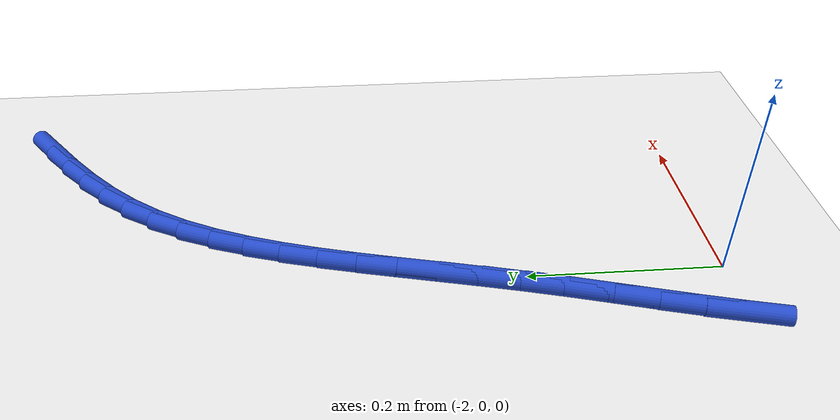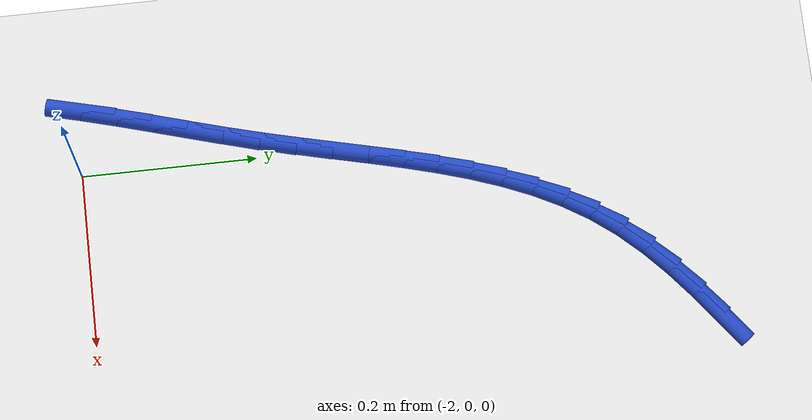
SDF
<sdf version="1.6">
 <world name="default">
  <model name="ground_plane">
   <static>1</static>
   <link name="link">
    <collision name="collision">
     <geometry><plane><normal>0 0 1</normal><size>100 100</size></plane></geometry>
     <surface><friction><ode><mu>100</mu><mu2>50</mu2></ode></friction></surface>
    </collision>
    <visual name="visual">
     <cast_shadows>0</cast_shadows>
     <geometry><plane><normal>0 0 1</normal><size>100 100</size></plane></geometry>
     <material>
      <script><uri>file://media/materials/scripts/gazebo.material</uri><name>Gazebo/WhiteGlow</name></script>
     </material>
    </visual>
   </link>
  </model>
  <model name="line">
   <link name="link_63">
    <pose>-1.7584496281487514 0.7029820099383466 0.01 0 1.57 0.6478691887304979</pose>
    <collision name="collision">
     <geometry><cylinder><radius>0.01</radius><length>0.08</length></cylinder></geometry>
    </collision>
    <visual name="visual">
     <material>
      <script><name>Gazebo/Blue</name><uri>file://media/materials/scripts/gazebo.material</uri></script>
     </material>
     <geometry><cylinder><radius>0.01</radius><length>0.08</length></cylinder></geometry>
    </visual>
   </link>
   <link name="link_64">
    <pose>-1.7893804857148055 0.6795720645738502 0.01 0 1.57 0.692455212820586</pose>
    <collision name="collision">
     <geometry><cylinder><radius>0.01</radius><length>0.08</length></cylinder></geometry>
    </collision>
    <visual name="visual">
     <material>
      <script><name>Gazebo/Blue</name><uri>file://media/materials/scripts/gazebo.material</uri></script>
     </material>
     <geometry><cylinder><radius>0.01</radius><length>0.08</length></cylinder></geometry>
    </visual>
   </link>
   <link name="link_65">
    <pose>-1.8187429183549715 0.655216744481386 0.01 0 1.57 0.7518047333218207</pose>
    <collision name="collision">
     <geometry><cylinder><radius>0.01</radius><length>0.08</length></cylinder></geometry>
    </collision>
    <visual name="visual">
     <material>
      <script><name>Gazebo/Blue</name><uri>file://media/materials/scripts/gazebo.material</uri></script>
     </material>
     <geometry><cylinder><radius>0.01</radius><length>0.08</length></cylinder></geometry>
    </visual>
   </link>
   <link name="link_66">
    <pose>-1.8461030765545035 0.6296357311424017 0.01 0 1.57 0.8269613467392573</pose>
    <collision name="collision">
     <geometry><cylinder><radius>0.01</radius><length>0.08</length></cylinder></geometry>
    </collision>
    <visual name="visual">
     <material>
      <script><name>Gazebo/Blue</name><uri>file://media/materials/scripts/gazebo.material</uri></script>
     </material>
     <geometry><cylinder><radius>0.01</radius><length>0.08</length></cylinder></geometry>
    </visual>
   </link>
   <link name="link_67">
    <pose>-1.871027110798656 0.602548706038346 0.01 0 1.57 0.9180808549782101</pose>
    <collision name="collision">
     <geometry><cylinder><radius>0.01</radius><length>0.08</length></cylinder></geometry>
    </collision>
    <visual name="visual">
     <material>
      <script><name>Gazebo/Blue</name><uri>file://media/materials/scripts/gazebo.material</uri></script>
     </material>
     <geometry><cylinder><radius>0.01</radius><length>0.08</length></cylinder></geometry>
    </visual>
   </link>
   <link name="link_68">
    <pose>-1.8930950445692258 0.5736827934199789 0.01 0 1.57 1.012942485640615</pose>
    <collision name="collision">
     <geometry><cylinder><radius>0.01</radius><length>0.08</length></cylinder></geometry>
    </collision>
    <visual name="visual">
     <material>
      <script><name>Gazebo/Blue</name><uri>file://media/materials/scripts/gazebo.material</uri></script>
     </material>
     <geometry><cylinder><radius>0.01</radius><length>0.08</length></cylinder></geometry>
    </visual>
   </link>
   <link name="link_69">
    <pose>-1.9122612434287372 0.5429659495459158 0.01 0 1.57 1.0969310419946503</pose>
    <collision name="collision">
     <geometry><cylinder><radius>0.01</radius><length>0.08</length></cylinder></geometry>
    </collision>
    <visual name="visual">
     <material>
      <script><name>Gazebo/Blue</name><uri>file://media/materials/scripts/gazebo.material</uri></script>
     </material>
     <geometry><cylinder><radius>0.01</radius><length>0.08</length></cylinder></geometry>
    </visual>
   </link>
   <link name="link_70">
    <pose>-1.9288879626675528 0.510544960769603 0.01 0 1.57 1.1680783631220166</pose>
    <collision name="collision">
     <geometry><cylinder><radius>0.01</radius><length>0.08</length></cylinder></geometry>
    </collision>
    <visual name="visual">
     <material>
      <script><name>Gazebo/Blue</name><uri>file://media/materials/scripts/gazebo.material</uri></script>
     </material>
     <geometry><cylinder><radius>0.01</radius><length>0.08</length></cylinder></geometry>
    </visual>
   </link>
   <link name="link_71">
    <pose>-1.943358055599255 0.47657766414536734 0.01 0 1.57 1.2260361169872203</pose>
    <collision name="collision">
     <geometry><cylinder><radius>0.01</radius><length>0.08</length></cylinder></geometry>
    </collision>
    <visual name="visual">
     <material>
      <script><name>Gazebo/Blue</name><uri>file://media/materials/scripts/gazebo.material</uri></script>
     </material>
     <geometry><cylinder><radius>0.01</radius><length>0.08</length></cylinder></geometry>
    </visual>
   </link>
   <link name="link_72">
    <pose>-1.9560543755374258 0.4412218967275364 0.01 0 1.57 1.2710981926636002</pose>
    <collision name="collision">
     <geometry><cylinder><radius>0.01</radius><length>0.08</length></cylinder></geometry>
    </collision>
    <visual name="visual">
     <material>
      <script><name>Gazebo/Blue</name><uri>file://media/materials/scripts/gazebo.material</uri></script>
     </material>
     <geometry><cylinder><radius>0.01</radius><length>0.08</length></cylinder></geometry>
    </visual>
   </link>
   <link name="link_73">
    <pose>-1.9673597757956456 0.40463549557043643 0.01 0 1.57 1.3038858844427896</pose>
    <collision name="collision">
     <geometry><cylinder><radius>0.01</radius><length>0.08</length></cylinder></geometry>
    </collision>
    <visual name="visual">
     <material>
      <script><name>Gazebo/Blue</name><uri>file://media/materials/scripts/gazebo.material</uri></script>
     </material>
     <geometry><cylinder><radius>0.01</radius><length>0.08</length></cylinder></geometry>
    </visual>
   </link>
   <link name="link_74">
    <pose>-1.9776571096874984 0.36697629772839435 0.01 0 1.57 1.3251204218791088</pose>
    <collision name="collision">
     <geometry><cylinder><radius>0.01</radius><length>0.08</length></cylinder></geometry>
    </collision>
    <visual name="visual">
     <material>
      <script><name>Gazebo/Blue</name><uri>file://media/materials/scripts/gazebo.material</uri></script>
     </material>
     <geometry><cylinder><radius>0.01</radius><length>0.08</length></cylinder></geometry>
    </visual>
   </link>
   <link name="link_75">
    <pose>-1.9873292305265657 0.3284021402557378 0.01 0 1.57 1.3354856590196138</pose>
    <collision name="collision">
     <geometry><cylinder><radius>0.01</radius><length>0.08</length></cylinder></geometry>
    </collision>
    <visual name="visual">
     <material>
      <script><name>Gazebo/Blue</name><uri>file://media/materials/scripts/gazebo.material</uri></script>
     </material>
     <geometry><cylinder><radius>0.01</radius><length>0.08</length></cylinder></geometry>
    </visual>
   </link>
   <link name="link_76">
    <pose>-1.9967589916264286 0.2890708602067929 0.01 0 1.57 1.3355611225246233</pose>
    <collision name="collision">
     <geometry><cylinder><radius>0.01</radius><length>0.08</length></cylinder></geometry>
    </collision>
    <visual name="visual">
     <material>
      <script><name>Gazebo/Blue</name><uri>file://media/materials/scripts/gazebo.material</uri></script>
     </material>
     <geometry><cylinder><radius>0.01</radius><length>0.08</length></cylinder></geometry>
    </visual>
   </link>
   <link name="link_77">
    <pose>-2.0063292463006692 0.24914029463588658 0.01 0 1.57 1.3258037215584941</pose>
    <collision name="collision">
     <geometry><cylinder><radius>0.01</radius><length>0.08</length></cylinder></geometry>
    </collision>
    <visual name="visual">
     <material>
      <script><name>Gazebo/Blue</name><uri>file://media/materials/scripts/gazebo.material</uri></script>
     </material>
     <geometry><cylinder><radius>0.01</radius><length>0.08</length></cylinder></geometry>
    </visual>
   </link>
   <link name="link_78">
    <pose>-2.016422847862871 0.20876828059734645 0.01 0 1.57 1.3076866216361704</pose>
    <collision name="collision">
     <geometry><cylinder><radius>0.01</radius><length>0.08</length></cylinder></geometry>
    </collision>
    <visual name="visual">
     <material>
      <script><name>Gazebo/Blue</name><uri>file://media/materials/scripts/gazebo.material</uri></script>
     </material>
     <geometry><cylinder><radius>0.01</radius><length>0.08</length></cylinder></geometry>
    </visual>
   </link>
   <link name="link_79">
    <pose>-2.0273739212579844 0.16811148646692367 0.01 0 1.57 1.2926458032368067</pose>
    <collision name="collision">
     <geometry><cylinder><radius>0.01</radius><length>0.08</length></cylinder></geometry>
    </collision>
    <visual name="visual">
     <material>
      <script><name>Gazebo/Blue</name><uri>file://media/materials/scripts/gazebo.material</uri></script>
     </material>
     <geometry><cylinder><radius>0.01</radius><length>0.08</length></cylinder></geometry>
    </visual>
   </link>
   <link name="link_80">
    <pose>-2.0390235494092726 0.1273147557293781 0.01 0 1.57 1.2869283241136418</pose>
    <collision name="collision">
     <geometry><cylinder><radius>0.01</radius><length>0.08</length></cylinder></geometry>
    </collision>
    <visual name="visual">
     <material>
      <script><name>Gazebo/Blue</name><uri>file://media/materials/scripts/gazebo.material</uri></script>
     </material>
     <geometry><cylinder><radius>0.01</radius><length>0.08</length></cylinder></geometry>
    </visual>
   </link>
   <link name="link_81">
    <pose>-2.050926439249759 0.08651606356064598 0.01 0 1.57 1.290465317721703</pose>
    <collision name="collision">
     <geometry><cylinder><radius>0.01</radius><length>0.08</length></cylinder></geometry>
    </collision>
    <visual name="visual">
     <material>
      <script><name>Gazebo/Blue</name><uri>file://media/materials/scripts/gazebo.material</uri></script>
     </material>
     <geometry><cylinder><radius>0.01</radius><length>0.08</length></cylinder></geometry>
    </visual>
   </link>
   <link name="link_82">
    <pose>-2.062633766761956 0.045853300451985414 0.01 0 1.57 1.303443632524193</pose>
    <collision name="collision">
     <geometry><cylinder><radius>0.01</radius><length>0.08</length></cylinder></geometry>
    </collision>
    <visual name="visual">
     <material>
      <script><name>Gazebo/Blue</name><uri>file://media/materials/scripts/gazebo.material</uri></script>
     </material>
     <geometry><cylinder><radius>0.01</radius><length>0.08</length></cylinder></geometry>
    </visual>
   </link>
   <link name="link_83">
    <pose>-2.073696707928377 0.005464356894655555 0.01 0 1.57 1.3263963725436894</pose>
    <collision name="collision">
     <geometry><cylinder><radius>0.01</radius><length>0.08</length></cylinder></geometry>
    </collision>
    <visual name="visual">
     <material>
      <script><name>Gazebo/Blue</name><uri>file://media/materials/scripts/gazebo.material</uri></script>
     </material>
     <geometry><cylinder><radius>0.01</radius><length>0.08</length></cylinder></geometry>
    </visual>
   </link>
  </model>
 </world>
</sdf>
